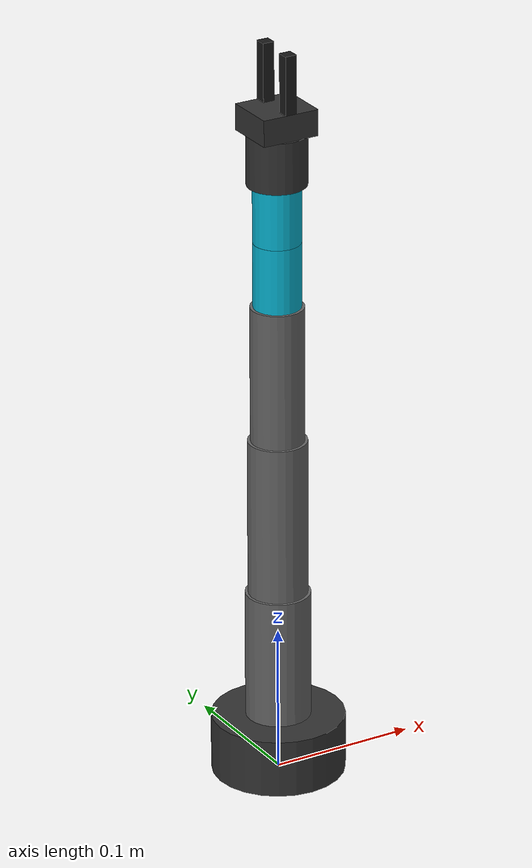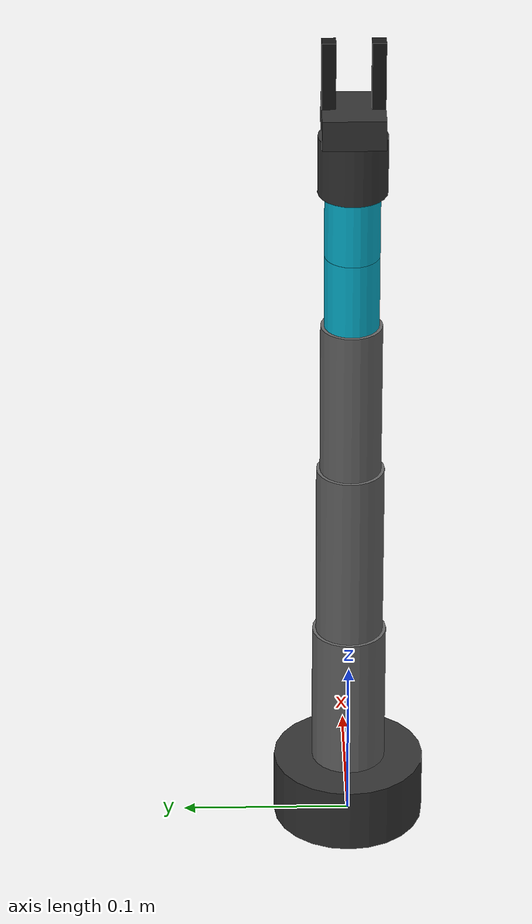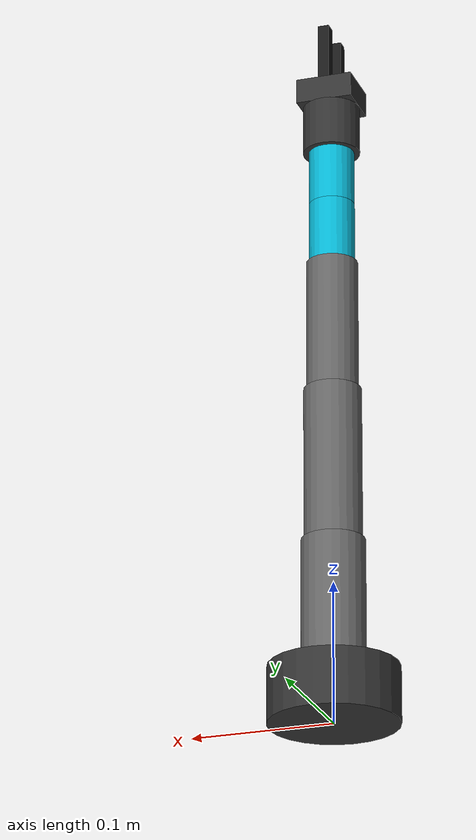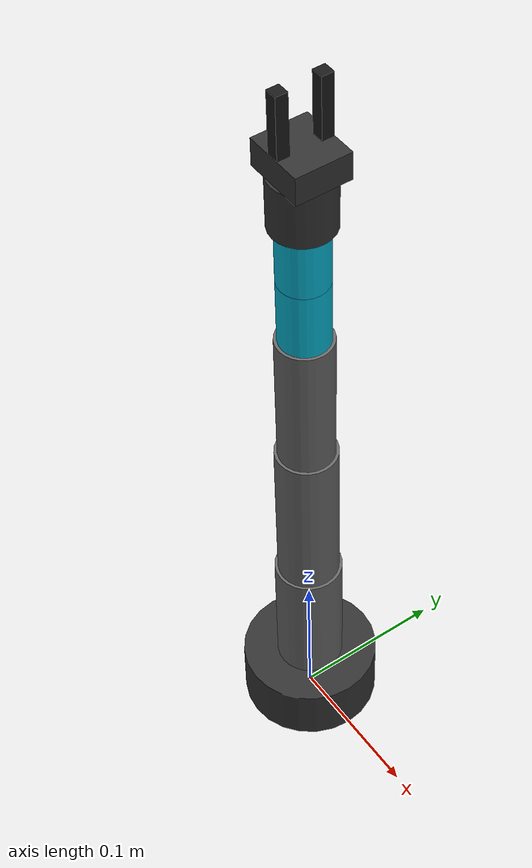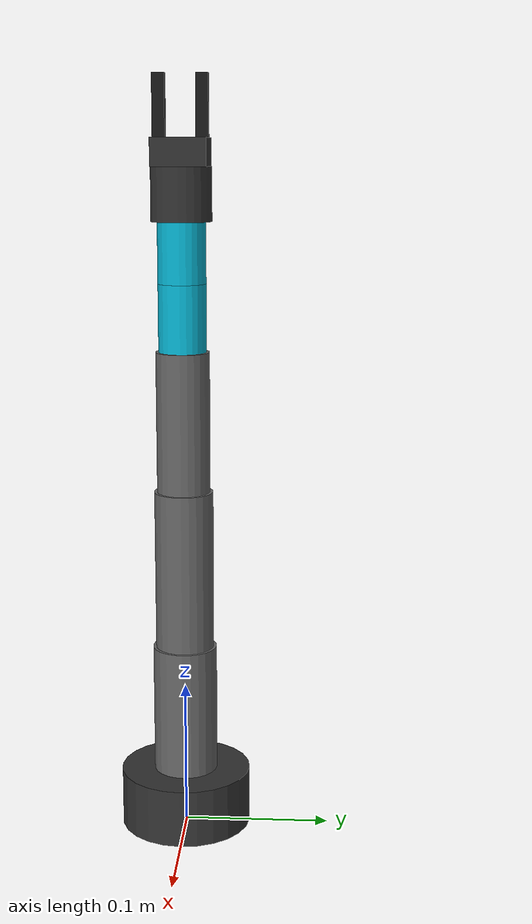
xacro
<?xml version="1.0"?>
<robot name="the_hand" xmlns:xacro="http://www.ros.org/wiki/xacro">

  <!-- ── LINK DIMENSIONS ── -->
  <xacro:property name="base_radius"       value="0.045"/>
  <xacro:property name="base_height"       value="0.040"/>

  <xacro:property name="link1_radius"      value="0.022"/>  <!-- shoulder -->
  <xacro:property name="link1_length"      value="0.090"/>

  <xacro:property name="link2_radius"      value="0.020"/>  <!-- upper arm -->
  <xacro:property name="link2_length"      value="0.110"/>

  <xacro:property name="link3_radius"      value="0.018"/>  <!-- forearm -->
  <xacro:property name="link3_length"      value="0.095"/>

  <xacro:property name="link4_radius"      value="0.016"/>  <!-- wrist roll -->
  <xacro:property name="link4_length"      value="0.045"/>

  <xacro:property name="link5_radius"      value="0.016"/>  <!-- wrist pitch -->
  <xacro:property name="link5_length"      value="0.040"/>

  <xacro:property name="link6_radius"      value="0.020"/>  <!-- wrist yaw housing -->
  <xacro:property name="link6_length"      value="0.035"/>

  <!-- ── GRIPPER DIMENSIONS ── -->
  <xacro:property name="palm_x"            value="0.040"/>
  <xacro:property name="palm_y"            value="0.036"/>
  <xacro:property name="palm_z"            value="0.018"/>

  <xacro:property name="finger_x"          value="0.008"/>
  <xacro:property name="finger_y"          value="0.008"/>
  <xacro:property name="finger_z"          value="0.040"/>

  <xacro:property name="finger_spread"     value="0.014"/>  <!-- half-gap between fingers -->

  <!-- ── CAMERA ── -->
  <xacro:property name="camera_x"          value="0.020"/>
  <xacro:property name="camera_y"          value="0.020"/>
  <xacro:property name="camera_z"          value="0.012"/>

  <!-- ── JOINT LIMITS (radians) ── -->
  <xacro:property name="joint1_lower"      value="${-pi}"/>
  <xacro:property name="joint1_upper"      value="${pi}"/>

  <xacro:property name="joint2_lower"      value="${-pi/2}"/>
  <xacro:property name="joint2_upper"      value="${pi/2}"/>

  <xacro:property name="joint3_lower"      value="${-pi/2}"/>
  <xacro:property name="joint3_upper"      value="${pi*0.75}"/>

  <xacro:property name="joint4_lower"      value="${-pi}"/>
  <xacro:property name="joint4_upper"      value="${pi}"/>

  <xacro:property name="joint5_lower"      value="${-pi/2}"/>
  <xacro:property name="joint5_upper"      value="${pi/2}"/>

  <xacro:property name="joint6_lower"      value="${-pi}"/>
  <xacro:property name="joint6_upper"      value="${pi}"/>

  <xacro:property name="gripper_lower"     value="0.0"/>
  <xacro:property name="gripper_upper"     value="0.025"/>

  <!-- ── DYNAMICS ── -->
  <xacro:property name="joint_damping"     value="0.5"/>
  <xacro:property name="joint_friction"    value="0.1"/>
  <xacro:property name="joint_effort"      value="10.0"/>
  <xacro:property name="joint_velocity"    value="2.0"/>

  <!-- ── MATERIALS ── -->
  <material name="dark_grey">
    <color rgba="0.2 0.2 0.2 1.0"/>
  </material>
  <material name="mid_grey">
    <color rgba="0.4 0.4 0.4 1.0"/>
  </material>
  <material name="cyan">
    <color rgba="0.024 0.714 0.831 1.0"/>
  </material>
  <material name="black">
    <color rgba="0.1 0.1 0.1 1.0"/>
  </material>

  <xacro:macro name="inertial_cylinder" params="mass radius length">
    <inertial>
      <mass value="${mass}"/>
      <inertia
        ixx="${(1.0/12.0) * mass * (3 * radius*radius + length*length)}"
        iyy="${(1.0/12.0) * mass * (3 * radius*radius + length*length)}"
        izz="${0.5 * mass * radius*radius}"
        ixy="0" ixz="0" iyz="0"/>
    </inertial>
  </xacro:macro>

  <xacro:macro name="inertial_box" params="mass x y z">
    <inertial>
      <mass value="${mass}"/>
      <inertia
        ixx="${(1.0/12.0) * mass * (y*y + z*z)}"
        iyy="${(1.0/12.0) * mass * (x*x + z*z)}"
        izz="${(1.0/12.0) * mass * (x*x + y*y)}"
        ixy="0" ixz="0" iyz="0"/>
    </inertial>
  </xacro:macro>

  <!-- ============================================================
       BASE LINK
  ============================================================ -->

  <link name="world"/>

  <joint name="world_to_base" type="fixed">
    <parent link="world"/>
    <child  link="base_link"/>
    <origin xyz="0 0 0" rpy="0 0 0"/>
  </joint>

  <link name="base_link">
    <visual>
      <origin xyz="0 0 ${base_height/2}" rpy="0 0 0"/>
      <geometry>
        <cylinder radius="${base_radius}" length="${base_height}"/>
      </geometry>
      <material name="dark_grey"/>
    </visual>
    <collision>
      <origin xyz="0 0 ${base_height/2}" rpy="0 0 0"/>
      <geometry>
        <cylinder radius="${base_radius}" length="${base_height}"/>
      </geometry>
    </collision>
    <xacro:inertial_cylinder mass="0.300" radius="${base_radius}" length="${base_height}"/>
  </link>

  <joint name="joint_1" type="revolute">
    <parent link="base_link"/>
    <child  link="link_1"/>
    <origin xyz="0 0 ${base_height}" rpy="0 0 0"/>
    <axis xyz="0 0 1"/>
    <limit lower="${joint1_lower}" upper="${joint1_upper}"
           effort="${joint_effort}" velocity="${joint_velocity}"/>
    <dynamics damping="${joint_damping}" friction="${joint_friction}"/>
  </joint>

  <link name="link_1">
    <visual>
      <origin xyz="0 0 ${link1_length/2}" rpy="0 0 0"/>
      <geometry>
        <cylinder radius="${link1_radius}" length="${link1_length}"/>
      </geometry>
      <material name="mid_grey"/>
    </visual>
    <collision>
      <origin xyz="0 0 ${link1_length/2}" rpy="0 0 0"/>
      <geometry>
        <cylinder radius="${link1_radius}" length="${link1_length}"/>
      </geometry>
    </collision>
    <xacro:inertial_cylinder mass="0.180" radius="${link1_radius}" length="${link1_length}"/>
  </link>

  <joint name="joint_2" type="revolute">
    <parent link="link_1"/>
    <child  link="link_2"/>
    <origin xyz="0 0 ${link1_length}" rpy="0 0 0"/>
    <axis xyz="0 1 0"/>
    <limit lower="${joint2_lower}" upper="${joint2_upper}"
           effort="${joint_effort}" velocity="${joint_velocity}"/>
    <dynamics damping="${joint_damping}" friction="${joint_friction}"/>
  </joint>

  <link name="link_2">
    <visual>
      <origin xyz="0 0 ${link2_length/2}" rpy="0 0 0"/>
      <geometry>
        <cylinder radius="${link2_radius}" length="${link2_length}"/>
      </geometry>
      <material name="mid_grey"/>
    </visual>
    <collision>
      <origin xyz="0 0 ${link2_length/2}" rpy="0 0 0"/>
      <geometry>
        <cylinder radius="${link2_radius}" length="${link2_length}"/>
      </geometry>
    </collision>
    <xacro:inertial_cylinder mass="0.160" radius="${link2_radius}" length="${link2_length}"/>
  </link>

  <joint name="joint_3" type="revolute">
    <parent link="link_2"/>
    <child  link="link_3"/>
    <origin xyz="0 0 ${link2_length}" rpy="0 0 0"/>
    <axis xyz="0 1 0"/>
    <limit lower="${joint3_lower}" upper="${joint3_upper}"
           effort="${joint_effort}" velocity="${joint_velocity}"/>
    <dynamics damping="${joint_damping}" friction="${joint_friction}"/>
  </joint>

  <link name="link_3">
    <visual>
      <origin xyz="0 0 ${link3_length/2}" rpy="0 0 0"/>
      <geometry>
        <cylinder radius="${link3_radius}" length="${link3_length}"/>
      </geometry>
      <material name="mid_grey"/>
    </visual>
    <collision>
      <origin xyz="0 0 ${link3_length/2}" rpy="0 0 0"/>
      <geometry>
        <cylinder radius="${link3_radius}" length="${link3_length}"/>
      </geometry>
    </collision>
    <xacro:inertial_cylinder mass="0.140" radius="${link3_radius}" length="${link3_length}"/>
  </link>

  <joint name="joint_4" type="revolute">
    <parent link="link_3"/>
    <child  link="link_4"/>
    <origin xyz="0 0 ${link3_length}" rpy="0 0 0"/>
    <axis xyz="0 0 1"/>
    <limit lower="${joint4_lower}" upper="${joint4_upper}"
           effort="${joint_effort}" velocity="${joint_velocity}"/>
    <dynamics damping="${joint_damping}" friction="${joint_friction}"/>
  </joint>

  <link name="link_4">
    <visual>
      <origin xyz="0 0 ${link4_length/2}" rpy="0 0 0"/>
      <geometry>
        <cylinder radius="${link4_radius}" length="${link4_length}"/>
      </geometry>
      <material name="cyan"/>
    </visual>
    <collision>
      <origin xyz="0 0 ${link4_length/2}" rpy="0 0 0"/>
      <geometry>
        <cylinder radius="${link4_radius}" length="${link4_length}"/>
      </geometry>
    </collision>
    <xacro:inertial_cylinder mass="0.080" radius="${link4_radius}" length="${link4_length}"/>
  </link>

  <joint name="joint_5" type="revolute">
    <parent link="link_4"/>
    <child  link="link_5"/>
    <origin xyz="0 0 ${link4_length}" rpy="0 0 0"/>
    <axis xyz="0 1 0"/>
    <limit lower="${joint5_lower}" upper="${joint5_upper}"
           effort="${joint_effort}" velocity="${joint_velocity}"/>
    <dynamics damping="${joint_damping}" friction="${joint_friction}"/>
  </joint>

  <link name="link_5">
    <visual>
      <origin xyz="0 0 ${link5_length/2}" rpy="0 0 0"/>
      <geometry>
        <cylinder radius="${link5_radius}" length="${link5_length}"/>
      </geometry>
      <material name="cyan"/>
    </visual>
    <collision>
      <origin xyz="0 0 ${link5_length/2}" rpy="0 0 0"/>
      <geometry>
        <cylinder radius="${link5_radius}" length="${link5_length}"/>
      </geometry>
    </collision>
    <xacro:inertial_cylinder mass="0.070" radius="${link5_radius}" length="${link5_length}"/>
  </link>

  <joint name="joint_6" type="revolute">
    <parent link="link_5"/>
    <child  link="link_6"/>
    <origin xyz="0 0 ${link5_length}" rpy="0 0 0"/>
    <axis xyz="0 0 1"/>
    <limit lower="${joint6_lower}" upper="${joint6_upper}"
           effort="${joint_effort}" velocity="${joint_velocity}"/>
    <dynamics damping="${joint_damping}" friction="${joint_friction}"/>
  </joint>

  <link name="link_6">
    <visual>
      <origin xyz="0 0 ${link6_length/2}" rpy="0 0 0"/>
      <geometry>
        <cylinder radius="${link6_radius}" length="${link6_length}"/>
      </geometry>
      <material name="dark_grey"/>
    </visual>
    <collision>
      <origin xyz="0 0 ${link6_length/2}" rpy="0 0 0"/>
      <geometry>
        <cylinder radius="${link6_radius}" length="${link6_length}"/>
      </geometry>
    </collision>
    <xacro:inertial_cylinder mass="0.060" radius="${link6_radius}" length="${link6_length}"/>
  </link>

  <joint name="joint_gripper_base" type="fixed">
    <parent link="link_6"/>
    <child  link="gripper_base"/>
    <origin xyz="0 0 ${link6_length}" rpy="0 0 0"/>
  </joint>

  <link name="gripper_base">
    <visual>
      <origin xyz="0 0 ${palm_z/2}" rpy="0 0 0"/>
      <geometry>
        <box size="${palm_x} ${palm_y} ${palm_z}"/>
      </geometry>
      <material name="dark_grey"/>
    </visual>
    <collision>
      <origin xyz="0 0 ${palm_z/2}" rpy="0 0 0"/>
      <geometry>
        <box size="${palm_x} ${palm_y} ${palm_z}"/>
      </geometry>
    </collision>
    <xacro:inertial_box mass="0.050" x="${palm_x}" y="${palm_y}" z="${palm_z}"/>
  </link>

  <!-- Left finger -->
  <joint name="joint_finger_left" type="prismatic">
    <parent link="gripper_base"/>
    <child  link="finger_left"/>
    <origin xyz="0 ${finger_spread} ${palm_z}" rpy="0 0 0"/>
    <axis xyz="0 1 0"/>
    <limit lower="${gripper_lower}" upper="${gripper_upper}"
           effort="5.0" velocity="0.5"/>
    <dynamics damping="0.2" friction="0.05"/>
  </joint>

  <link name="finger_left">
    <visual>
      <origin xyz="0 0 ${finger_z/2}" rpy="0 0 0"/>
      <geometry>
        <box size="${finger_x} ${finger_y} ${finger_z}"/>
      </geometry>
      <material name="black"/>
    </visual>
    <collision>
      <origin xyz="0 0 ${finger_z/2}" rpy="0 0 0"/>
      <geometry>
        <box size="${finger_x} ${finger_y} ${finger_z}"/>
      </geometry>
    </collision>
    <xacro:inertial_box mass="0.015" x="${finger_x}" y="${finger_y}" z="${finger_z}"/>
  </link>

  <!-- Right finger (mirrors left) -->
  <joint name="joint_finger_right" type="prismatic">
    <parent link="gripper_base"/>
    <child  link="finger_right"/>
    <origin xyz="0 ${-finger_spread} ${palm_z}" rpy="0 0 0"/>
    <axis xyz="0 -1 0"/>
    <limit lower="${gripper_lower}" upper="${gripper_upper}"
           effort="5.0" velocity="0.5"/>
    <dynamics damping="0.2" friction="0.05"/>
  </joint>

  <link name="finger_right">
    <visual>
      <origin xyz="0 0 ${finger_z/2}" rpy="0 0 0"/>
      <geometry>
        <box size="${finger_x} ${finger_y} ${finger_z}"/>
      </geometry>
      <material name="black"/>
    </visual>
    <collision>
      <origin xyz="0 0 ${finger_z/2}" rpy="0 0 0"/>
      <geometry>
        <box size="${finger_x} ${finger_y} ${finger_z}"/>
      </geometry>
    </collision>
    <xacro:inertial_box mass="0.015" x="${finger_x}" y="${finger_y}" z="${finger_z}"/>
  </link>

  <joint name="joint_camera" type="fixed">
    <parent link="gripper_base"/>
    <child  link="camera_link"/>
    <origin xyz="0 0 ${-camera_z}" rpy="${pi} 0 0"/>
  </joint>

  <link name="camera_link">
    <visual>
      <origin xyz="0 0 0" rpy="0 0 0"/>
      <geometry>
        <box size="${camera_x} ${camera_y} ${camera_z}"/>
      </geometry>
      <material name="black"/>
    </visual>
    <collision>
      <origin xyz="0 0 0" rpy="0 0 0"/>
      <geometry>
        <box size="${camera_x} ${camera_y} ${camera_z}"/>
      </geometry>
    </collision>
    <xacro:inertial_box mass="0.010" x="${camera_x}" y="${camera_y}" z="${camera_z}"/>
  </link>

  <!-- Optical frame — Z forward, X right, Y down (ROS convention) -->
  <joint name="joint_camera_optical" type="fixed">
    <parent link="camera_link"/>
    <child  link="camera_optical_frame"/>
    <origin xyz="0 0 0" rpy="${-pi/2} 0 ${-pi/2}"/>
  </joint>

  <link name="camera_optical_frame"/>

  <!-- ============================================================
       GAZEBO PLUGINS
  ============================================================ -->

  <!-- ros2_control plugin for Gazebo Harmonic -->
  <gazebo>
    <plugin filename="gz_ros2_control-system"
            name="gz_ros2_control::GazeboSimROS2ControlPlugin">
      <parameters>$(find the_hand_description)/config/ros2_controllers.yaml</parameters>
    </plugin>
  </gazebo>

  <!-- Camera sensor -->
  <gazebo reference="camera_link">
    <sensor name="the_hand_camera" type="camera">
      <always_on>true</always_on>
      <update_rate>30</update_rate>
      <visualize>true</visualize>
      <topic>/camera/image_raw</topic>
      <camera>
        <horizontal_fov>1.047</horizontal_fov>  <!-- 60 degrees -->
        <image>
          <width>640</width>
          <height>480</height>
          <format>R8G8B8</format>
        </image>
        <clip>
          <near>0.01</near>
          <far>5.0</far>
        </clip>
      </camera>
    </sensor>
  </gazebo>

  <!-- Per-link Gazebo material overrides -->
  <gazebo reference="base_link">  <material>Gazebo/DarkGrey</material> </gazebo>
  <gazebo reference="link_1">     <material>Gazebo/Grey</material>     </gazebo>
  <gazebo reference="link_2">     <material>Gazebo/Grey</material>     </gazebo>
  <gazebo reference="link_3">     <material>Gazebo/Grey</material>     </gazebo>
  <gazebo reference="link_4">     <material>Gazebo/Turquoise</material></gazebo>
  <gazebo reference="link_5">     <material>Gazebo/Turquoise</material></gazebo>
  <gazebo reference="link_6">     <material>Gazebo/DarkGrey</material> </gazebo>
  <gazebo reference="gripper_base"><material>Gazebo/DarkGrey</material></gazebo>
  <gazebo reference="finger_left"> <material>Gazebo/Black</material>   </gazebo>
  <gazebo reference="finger_right"><material>Gazebo/Black</material>   </gazebo>
  <gazebo reference="camera_link"> <material>Gazebo/Black</material>   </gazebo>

  <ros2_control name="the_hand_system" type="system">
    <hardware>
      <plugin>mock_components/GenericSystem</plugin>
    </hardware>

    <joint name="joint_1">
      <command_interface name="position"/>
      <state_interface name="position"><param name="initial_value">0.0</param></state_interface>
      <state_interface name="velocity"/>
    </joint>
    <joint name="joint_2">
      <command_interface name="position"/>
      <state_interface name="position"><param name="initial_value">0.0</param></state_interface>
      <state_interface name="velocity"/>
    </joint>
    <joint name="joint_3">
      <command_interface name="position"/>
      <state_interface name="position"><param name="initial_value">0.0</param></state_interface>
      <state_interface name="velocity"/>
    </joint>
    <joint name="joint_4">
      <command_interface name="position"/>
      <state_interface name="position"><param name="initial_value">0.0</param></state_interface>
      <state_interface name="velocity"/>
    </joint>
    <joint name="joint_5">
      <command_interface name="position"/>
      <state_interface name="position"><param name="initial_value">0.0</param></state_interface>
      <state_interface name="velocity"/>
    </joint>
    <joint name="joint_6">
      <command_interface name="position"/>
      <state_interface name="position"><param name="initial_value">0.0</param></state_interface>
      <state_interface name="velocity"/>
    </joint>
    <joint name="joint_finger_left">
      <command_interface name="position"/>
      <state_interface name="position"><param name="initial_value">0.0</param></state_interface>
      <state_interface name="velocity"/>
    </joint>
    <joint name="joint_finger_right">
      <command_interface name="position"/>
      <state_interface name="position"><param name="initial_value">0.0</param></state_interface>
      <state_interface name="velocity"/>
    </joint>
  </ros2_control>

</robot>
